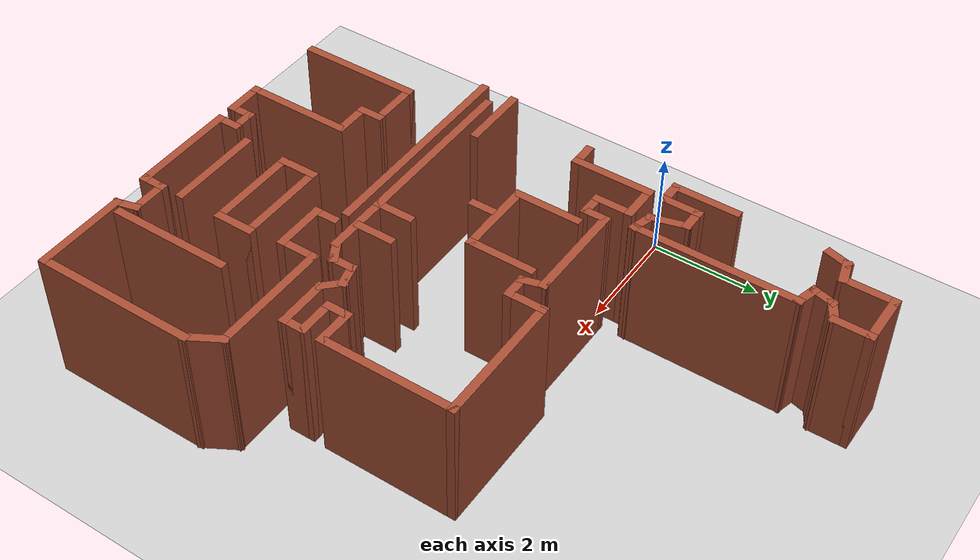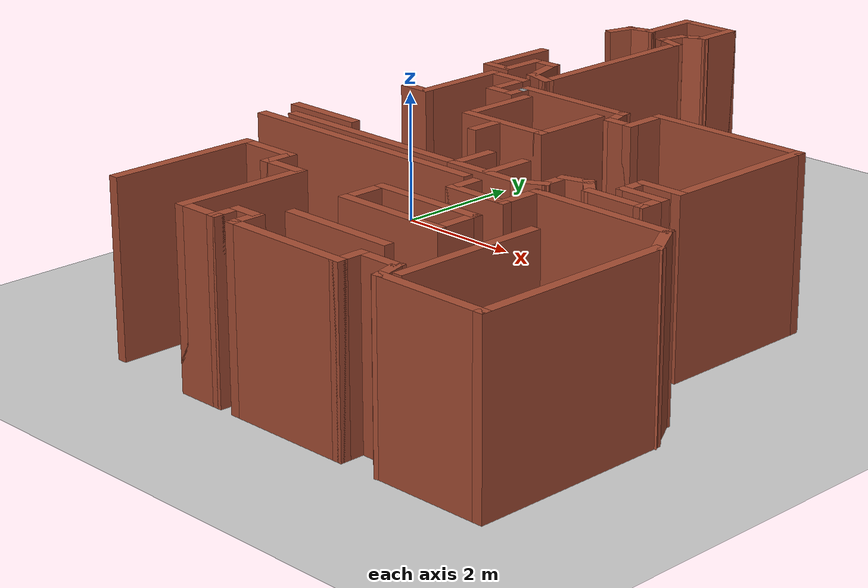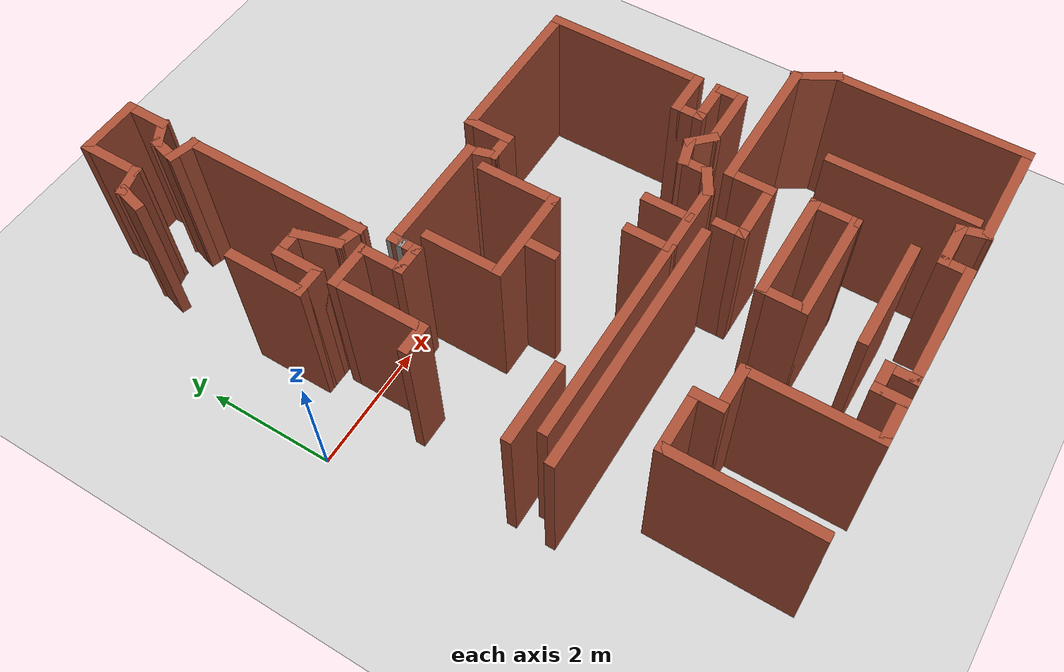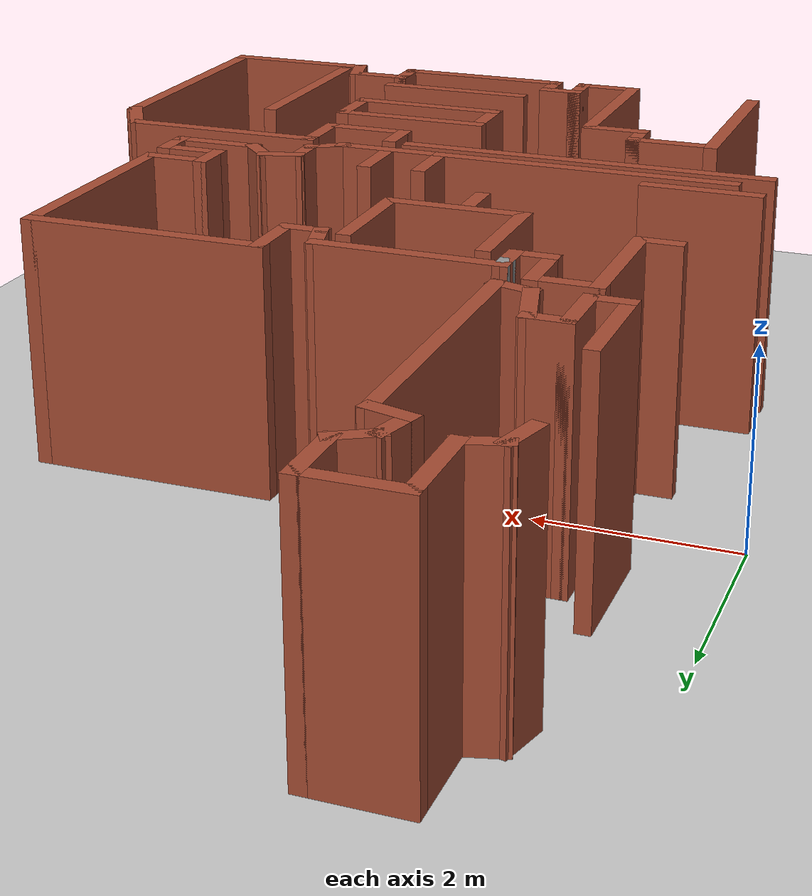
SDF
<sdf version="1.6">
 <world name="default">
  <model name="ground_plane">
   <static>1</static>
   <link name="link">
    <collision name="collision">
     <geometry><plane><normal>0 0 1</normal><size>100 100</size></plane></geometry>
     <surface>
      <contact><collide_bitmask>65535</collide_bitmask></contact>
      <friction><ode><mu>100</mu><mu2>50</mu2></ode></friction>
     </surface>
    </collision>
    <visual name="visual">
     <cast_shadows>0</cast_shadows>
     <geometry><plane><normal>0 0 1</normal><size>100 100</size></plane></geometry>
     <material>
      <script><uri>file://media/materials/scripts/gazebo.material</uri><name>Gazebo/Grey</name></script>
     </material>
    </visual>
   </link>
  </model>
  <model name="map_29">
   <pose>1.33629 -0.887991 0 0 -0 0</pose>
   <link name="Wall_100">
    <collision name="Wall_100_Collision">
     <geometry><box><size>0.75 0.15 2.5</size></box></geometry>
     <pose>0 0 1.25 0 -0 0</pose>
    </collision>
    <visual name="Wall_100_Visual">
     <pose>0 0 1.25 0 -0 0</pose>
     <geometry><box><size>0.75 0.15 2.5</size></box></geometry>
     <material>
      <script><uri>file://media/materials/scripts/gazebo.material</uri><name>Gazebo/Bricks</name></script>
      <ambient>1 1 1 1</ambient>
     </material>
     <meta><layer>0</layer></meta>
    </visual>
    <pose>6.46557 -2.50228 0 0 -0 2.0944</pose>
   </link>
   <link name="Wall_101">
    <collision name="Wall_101_Collision">
     <geometry><box><size>2.25 0.15 2.5</size></box></geometry>
     <pose>0 0 1.25 0 -0 0</pose>
    </collision>
    <visual name="Wall_101_Visual">
     <pose>0 0 1.25 0 -0 0</pose>
     <geometry><box><size>2.25 0.15 2.5</size></box></geometry>
     <material>
      <script><uri>file://media/materials/scripts/gazebo.material</uri><name>Gazebo/Bricks</name></script>
      <ambient>1 1 1 1</ambient>
     </material>
     <meta><layer>0</layer></meta>
    </visual>
    <pose>5.26557 -2.24247 0 0 -0 3.14159</pose>
   </link>
   <link name="Wall_102">
    <collision name="Wall_102_Collision">
     <geometry><box><size>0.75 0.15 2.5</size></box></geometry>
     <pose>0 0 1.25 0 -0 0</pose>
    </collision>
    <visual name="Wall_102_Visual">
     <pose>0 0 1.25 0 -0 0</pose>
     <geometry><box><size>0.75 0.15 2.5</size></box></geometry>
     <material>
      <script><uri>file://media/materials/scripts/gazebo.material</uri><name>Gazebo/Bricks</name></script>
      <ambient>1 1 1 1</ambient>
     </material>
     <meta><layer>0</layer></meta>
    </visual>
    <pose>4.21557 -2.54247 0 0 -0 -1.5708</pose>
   </link>
   <link name="Wall_103">
    <collision name="Wall_103_Collision">
     <geometry><box><size>1 0.15 2.5</size></box></geometry>
     <pose>0 0 1.25 0 -0 0</pose>
    </collision>
    <visual name="Wall_103_Visual">
     <pose>0 0 1.25 0 -0 0</pose>
     <geometry><box><size>1 0.15 2.5</size></box></geometry>
     <material>
      <script><uri>file://media/materials/scripts/gazebo.material</uri><name>Gazebo/Bricks</name></script>
      <ambient>1 1 1 1</ambient>
     </material>
     <meta><layer>0</layer></meta>
    </visual>
    <pose>3.79057 -2.84247 0 0 -0 3.14159</pose>
   </link>
   <link name="Wall_104">
    <collision name="Wall_104_Collision">
     <geometry><box><size>0.5 0.15 2.5</size></box></geometry>
     <pose>0 0 1.25 0 -0 0</pose>
    </collision>
    <visual name="Wall_104_Visual">
     <pose>0 0 1.25 0 -0 0</pose>
     <geometry><box><size>0.5 0.15 2.5</size></box></geometry>
     <material>
      <script><uri>file://media/materials/scripts/gazebo.material</uri><name>Gazebo/Bricks</name></script>
      <ambient>1 1 1 1</ambient>
     </material>
     <meta><layer>0</layer></meta>
    </visual>
    <pose>3.36557 -2.66747 0 0 -0 1.5708</pose>
   </link>
   <link name="Wall_107">
    <collision name="Wall_107_Collision">
     <geometry><box><size>4 0.15 2.5</size></box></geometry>
     <pose>0 0 1.25 0 -0 0</pose>
    </collision>
    <visual name="Wall_107_Visual">
     <pose>0 0 1.25 0 -0 0</pose>
     <geometry><box><size>4 0.15 2.5</size></box></geometry>
     <material>
      <script><uri>file://media/materials/scripts/gazebo.material</uri><name>Gazebo/Bricks</name></script>
      <ambient>1 1 1 1</ambient>
     </material>
     <meta><layer>0</layer></meta>
    </visual>
    <pose>1.18819 -2.4126 0 0 -0 3.14159</pose>
   </link>
   <link name="Wall_109">
    <collision name="Wall_109_Collision">
     <geometry><box><size>1.25 0.15 2.5</size></box></geometry>
     <pose>0 0 1.25 0 -0 0</pose>
    </collision>
    <visual name="Wall_109_Visual">
     <pose>0 0 1.25 0 -0 0</pose>
     <geometry><box><size>1.25 0.15 2.5</size></box></geometry>
     <material>
      <script><uri>file://media/materials/scripts/gazebo.material</uri><name>Gazebo/Bricks</name></script>
      <ambient>1 1 1 1</ambient>
     </material>
     <meta><layer>0</layer></meta>
    </visual>
    <pose>-0.186808 -1.8126 0 0 -0 0</pose>
   </link>
   <link name="Wall_112">
    <collision name="Wall_112_Collision">
     <geometry><box><size>3.25 0.15 2.5</size></box></geometry>
     <pose>0 0 1.25 0 -0 0</pose>
    </collision>
    <visual name="Wall_112_Visual">
     <pose>0 0 1.25 0 -0 0</pose>
     <geometry><box><size>3.25 0.15 2.5</size></box></geometry>
     <material>
      <script><uri>file://media/materials/scripts/gazebo.material</uri><name>Gazebo/Bricks</name></script>
      <ambient>1 1 1 1</ambient>
     </material>
     <meta><layer>0</layer></meta>
    </visual>
    <pose>1.11889 -2.1278 0 0 -0 0</pose>
   </link>
   <link name="Wall_113">
    <collision name="Wall_113_Collision">
     <geometry><box><size>0.75 0.15 2.5</size></box></geometry>
     <pose>0 0 1.25 0 -0 0</pose>
    </collision>
    <visual name="Wall_113_Visual">
     <pose>0 0 1.25 0 -0 0</pose>
     <geometry><box><size>0.75 0.15 2.5</size></box></geometry>
     <material>
      <script><uri>file://media/materials/scripts/gazebo.material</uri><name>Gazebo/Bricks</name></script>
      <ambient>1 1 1 1</ambient>
     </material>
     <meta><layer>0</layer></meta>
    </visual>
    <pose>2.66889 -1.8278 0 0 -0 1.5708</pose>
   </link>
   <link name="Wall_115">
    <collision name="Wall_115_Collision">
     <geometry><box><size>1.25 0.15 2.5</size></box></geometry>
     <pose>0 0 1.25 0 -0 0</pose>
    </collision>
    <visual name="Wall_115_Visual">
     <pose>0 0 1.25 0 -0 0</pose>
     <geometry><box><size>1.25 0.15 2.5</size></box></geometry>
     <material>
      <script><uri>file://media/materials/scripts/gazebo.material</uri><name>Gazebo/Bricks</name></script>
      <ambient>1 1 1 1</ambient>
     </material>
     <meta><layer>0</layer></meta>
    </visual>
    <pose>3.21889 -2.1278 0 0 -0 0</pose>
   </link>
   <link name="Wall_116">
    <collision name="Wall_116_Collision">
     <geometry><box><size>0.5 0.15 2.5</size></box></geometry>
     <pose>0 0 1.25 0 -0 0</pose>
    </collision>
    <visual name="Wall_116_Visual">
     <pose>0 0 1.25 0 -0 0</pose>
     <geometry><box><size>0.5 0.15 2.5</size></box></geometry>
     <material>
      <script><uri>file://media/materials/scripts/gazebo.material</uri><name>Gazebo/Bricks</name></script>
      <ambient>1 1 1 1</ambient>
     </material>
     <meta><layer>0</layer></meta>
    </visual>
    <pose>3.92045 -2.0403 0 0 -0 0.523599</pose>
   </link>
   <link name="Wall_117">
    <collision name="Wall_117_Collision">
     <geometry><box><size>0.5 0.15 2.5</size></box></geometry>
     <pose>0 0 1.25 0 -0 0</pose>
    </collision>
    <visual name="Wall_117_Visual">
     <pose>0 0 1.25 0 -0 0</pose>
     <geometry><box><size>0.5 0.15 2.5</size></box></geometry>
     <material>
      <script><uri>file://media/materials/scripts/gazebo.material</uri><name>Gazebo/Bricks</name></script>
      <ambient>1 1 1 1</ambient>
     </material>
     <meta><layer>0</layer></meta>
    </visual>
    <pose>4.072 -1.7778 0 0 -0 1.5708</pose>
   </link>
   <link name="Wall_118">
    <collision name="Wall_118_Collision">
     <geometry><box><size>0.5 0.15 2.5</size></box></geometry>
     <pose>0 0 1.25 0 -0 0</pose>
    </collision>
    <visual name="Wall_118_Visual">
     <pose>0 0 1.25 0 -0 0</pose>
     <geometry><box><size>0.5 0.15 2.5</size></box></geometry>
     <material>
      <script><uri>file://media/materials/scripts/gazebo.material</uri><name>Gazebo/Bricks</name></script>
      <ambient>1 1 1 1</ambient>
     </material>
     <meta><layer>0</layer></meta>
    </visual>
    <pose>4.24104 -1.55751 0 0 -0 0.261799</pose>
   </link>
   <link name="Wall_119">
    <collision name="Wall_119_Collision">
     <geometry><box><size>0.5 0.15 2.5</size></box></geometry>
     <pose>0 0 1.25 0 -0 0</pose>
    </collision>
    <visual name="Wall_119_Visual">
     <pose>0 0 1.25 0 -0 0</pose>
     <geometry><box><size>0.5 0.15 2.5</size></box></geometry>
     <material>
      <script><uri>file://media/materials/scripts/gazebo.material</uri><name>Gazebo/Bricks</name></script>
      <ambient>1 1 1 1</ambient>
     </material>
     <meta><layer>0</layer></meta>
    </visual>
    <pose>4.53382 -1.63596 0 0 -0 -0.785398</pose>
   </link>
   <link name="Wall_120">
    <collision name="Wall_120_Collision">
     <geometry><box><size>1 0.15 2.5</size></box></geometry>
     <pose>0 0 1.25 0 -0 0</pose>
    </collision>
    <visual name="Wall_120_Visual">
     <pose>0 0 1.25 0 -0 0</pose>
     <geometry><box><size>1 0.15 2.5</size></box></geometry>
     <material>
      <script><uri>file://media/materials/scripts/gazebo.material</uri><name>Gazebo/Bricks</name></script>
      <ambient>1 1 1 1</ambient>
     </material>
     <meta><layer>0</layer></meta>
    </visual>
    <pose>5.08256 -1.7597 0 0 -0 0</pose>
   </link>
   <link name="Wall_125">
    <collision name="Wall_125_Collision">
     <geometry><box><size>0.5 0.15 2.5</size></box></geometry>
     <pose>0 0 1.25 0 -0 0</pose>
    </collision>
    <visual name="Wall_125_Visual">
     <pose>0 0 1.25 0 -0 0</pose>
     <geometry><box><size>0.5 0.15 2.5</size></box></geometry>
     <material>
      <script><uri>file://media/materials/scripts/gazebo.material</uri><name>Gazebo/Bricks</name></script>
      <ambient>1 1 1 1</ambient>
     </material>
     <meta><layer>0</layer></meta>
    </visual>
    <pose>5.50756 -1.5847 0 0 -0 1.5708</pose>
   </link>
   <link name="Wall_126">
    <collision name="Wall_126_Collision">
     <geometry><box><size>0.75 0.15 2.5</size></box></geometry>
     <pose>0 0 1.25 0 -0 0</pose>
    </collision>
    <visual name="Wall_126_Visual">
     <pose>0 0 1.25 0 -0 0</pose>
     <geometry><box><size>0.75 0.15 2.5</size></box></geometry>
     <material>
      <script><uri>file://media/materials/scripts/gazebo.material</uri><name>Gazebo/Bricks</name></script>
      <ambient>1 1 1 1</ambient>
     </material>
     <meta><layer>0</layer></meta>
    </visual>
    <pose>5.20756 -1.4097 0 0 -0 3.14159</pose>
   </link>
   <link name="Wall_127">
    <collision name="Wall_127_Collision">
     <geometry><box><size>0.5 0.15 2.5</size></box></geometry>
     <pose>0 0 1.25 0 -0 0</pose>
    </collision>
    <visual name="Wall_127_Visual">
     <pose>0 0 1.25 0 -0 0</pose>
     <geometry><box><size>0.5 0.15 2.5</size></box></geometry>
     <material>
      <script><uri>file://media/materials/scripts/gazebo.material</uri><name>Gazebo/Bricks</name></script>
      <ambient>1 1 1 1</ambient>
     </material>
     <meta><layer>0</layer></meta>
    </visual>
    <pose>4.90756 -1.2347 0 0 -0 1.5708</pose>
   </link>
   <link name="Wall_128">
    <collision name="Wall_128_Collision">
     <geometry><box><size>0.75 0.15 2.5</size></box></geometry>
     <pose>0 0 1.25 0 -0 0</pose>
    </collision>
    <visual name="Wall_128_Visual">
     <pose>0 0 1.25 0 -0 0</pose>
     <geometry><box><size>0.75 0.15 2.5</size></box></geometry>
     <material>
      <script><uri>file://media/materials/scripts/gazebo.material</uri><name>Gazebo/Bricks</name></script>
      <ambient>1 1 1 1</ambient>
     </material>
     <meta><layer>0</layer></meta>
    </visual>
    <pose>5.20756 -1.0597 0 0 -0 0</pose>
   </link>
   <link name="Wall_129">
    <collision name="Wall_129_Collision">
     <geometry><box><size>2.5 0.15 2.5</size></box></geometry>
     <pose>0 0 1.25 0 -0 0</pose>
    </collision>
    <visual name="Wall_129_Visual">
     <pose>0 0 1.25 0 -0 0</pose>
     <geometry><box><size>2.5 0.15 2.5</size></box></geometry>
     <material>
      <script><uri>file://media/materials/scripts/gazebo.material</uri><name>Gazebo/Bricks</name></script>
      <ambient>1 1 1 1</ambient>
     </material>
     <meta><layer>0</layer></meta>
    </visual>
    <pose>5.50756 0.115297 0 0 -0 1.5708</pose>
   </link>
   <link name="Wall_130">
    <collision name="Wall_130_Collision">
     <geometry><box><size>2.5 0.15 2.5</size></box></geometry>
     <pose>0 0 1.25 0 -0 0</pose>
    </collision>
    <visual name="Wall_130_Visual">
     <pose>0 0 1.25 0 -0 0</pose>
     <geometry><box><size>2.5 0.15 2.5</size></box></geometry>
     <material>
      <script><uri>file://media/materials/scripts/gazebo.material</uri><name>Gazebo/Bricks</name></script>
      <ambient>1 1 1 1</ambient>
     </material>
     <meta><layer>0</layer></meta>
    </visual>
    <pose>4.33256 1.2903 0 0 -0 3.14159</pose>
   </link>
   <link name="Wall_135">
    <collision name="Wall_135_Collision">
     <geometry><box><size>0.25 0.15 2.5</size></box></geometry>
     <pose>0 0 1.25 0 -0 0</pose>
    </collision>
    <visual name="Wall_135_Visual">
     <pose>0 0 1.25 0 -0 0</pose>
     <geometry><box><size>0.25 0.15 2.5</size></box></geometry>
     <material>
      <script><uri>file://media/materials/scripts/gazebo.material</uri><name>Gazebo/Grey</name></script>
      <ambient>1 1 1 1</ambient>
     </material>
     <meta><layer>0</layer></meta>
    </visual>
    <pose>0.931681 0.98689 0 0 -0 -1.5708</pose>
   </link>
   <link name="Wall_139">
    <collision name="Wall_139_Collision">
     <geometry><box><size>0.75 0.15 2.5</size></box></geometry>
     <pose>0 0 1.25 0 -0 0</pose>
    </collision>
    <visual name="Wall_139_Visual">
     <pose>0 0 1.25 0 -0 0</pose>
     <geometry><box><size>0.75 0.15 2.5</size></box></geometry>
     <material>
      <script><uri>file://media/materials/scripts/gazebo.material</uri><name>Gazebo/Bricks</name></script>
      <ambient>1 1 1 1</ambient>
     </material>
     <meta><layer>0</layer></meta>
    </visual>
    <pose>3.15756 0.990297 0 0 -0 -1.5708</pose>
   </link>
   <link name="Wall_140">
    <collision name="Wall_140_Collision">
     <geometry><box><size>0.5 0.15 2.5</size></box></geometry>
     <pose>0 0 1.25 0 -0 0</pose>
    </collision>
    <visual name="Wall_140_Visual">
     <pose>0 0 1.25 0 -0 0</pose>
     <geometry><box><size>0.5 0.15 2.5</size></box></geometry>
     <material>
      <script><uri>file://media/materials/scripts/gazebo.material</uri><name>Gazebo/Bricks</name></script>
      <ambient>1 1 1 1</ambient>
     </material>
     <meta><layer>0</layer></meta>
    </visual>
    <pose>2.98256 0.690297 0 0 -0 3.14159</pose>
   </link>
   <link name="Wall_141">
    <collision name="Wall_141_Collision">
     <geometry><box><size>0.5 0.15 2.5</size></box></geometry>
     <pose>0 0 1.25 0 -0 0</pose>
    </collision>
    <visual name="Wall_141_Visual">
     <pose>0 0 1.25 0 -0 0</pose>
     <geometry><box><size>0.5 0.15 2.5</size></box></geometry>
     <material>
      <script><uri>file://media/materials/scripts/gazebo.material</uri><name>Gazebo/Bricks</name></script>
      <ambient>1 1 1 1</ambient>
     </material>
     <meta><layer>0</layer></meta>
    </visual>
    <pose>2.76227 0.859334 0 0 -0 1.8326</pose>
   </link>
   <link name="Wall_142">
    <collision name="Wall_142_Collision">
     <geometry><box><size>1.93532 0.15 2.5</size></box></geometry>
     <pose>0 0 1.25 0 -0 0</pose>
    </collision>
    <visual name="Wall_142_Visual">
     <pose>0 0 1.25 0 -0 0</pose>
     <geometry><box><size>1.93532 0.15 2.5</size></box></geometry>
     <material>
      <script><uri>file://media/materials/scripts/gazebo.material</uri><name>Gazebo/Bricks</name></script>
      <ambient>1 1 1 1</ambient>
     </material>
     <meta><layer>0</layer></meta>
    </visual>
    <pose>1.82433 1.03263 0 0 -0 3.13682</pose>
   </link>
   <link name="Wall_145">
    <collision name="Wall_145_Collision">
     <geometry><box><size>0.5 0.15 2.5</size></box></geometry>
     <pose>0 0 1.25 0 -0 0</pose>
    </collision>
    <visual name="Wall_145_Visual">
     <pose>0 0 1.25 0 -0 0</pose>
     <geometry><box><size>0.5 0.15 2.5</size></box></geometry>
     <material>
      <script><uri>file://media/materials/scripts/gazebo.material</uri><name>Gazebo/Bricks</name></script>
      <ambient>1 1 1 1</ambient>
     </material>
     <meta><layer>0</layer></meta>
    </visual>
    <pose>0.931681 0.86189 0 0 -0 -1.5708</pose>
   </link>
   <link name="Wall_146">
    <collision name="Wall_146_Collision">
     <geometry><box><size>0.5 0.15 2.5</size></box></geometry>
     <pose>0 0 1.25 0 -0 0</pose>
    </collision>
    <visual name="Wall_146_Visual">
     <pose>0 0 1.25 0 -0 0</pose>
     <geometry><box><size>0.5 0.15 2.5</size></box></geometry>
     <material>
      <script><uri>file://media/materials/scripts/gazebo.material</uri><name>Gazebo/Bricks</name></script>
      <ambient>1 1 1 1</ambient>
     </material>
     <meta><layer>0</layer></meta>
    </visual>
    <pose>0.756681 0.686889 0 0 -0 3.14159</pose>
   </link>
   <link name="Wall_149">
    <collision name="Wall_149_Collision">
     <geometry><box><size>0.75 0.15 2.5</size></box></geometry>
     <pose>0 0 1.25 0 -0 0</pose>
    </collision>
    <visual name="Wall_149_Visual">
     <pose>0 0 1.25 0 -0 0</pose>
     <geometry><box><size>0.75 0.15 2.5</size></box></geometry>
     <material>
      <script><uri>file://media/materials/scripts/gazebo.material</uri><name>Gazebo/Bricks</name></script>
      <ambient>1 1 1 1</ambient>
     </material>
     <meta><layer>0</layer></meta>
    </visual>
    <pose>0.581681 0.98689 0 0 -0 1.5708</pose>
   </link>
   <link name="Wall_150">
    <collision name="Wall_150_Collision">
     <geometry><box><size>0.75 0.15 2.5</size></box></geometry>
     <pose>0 0 1.25 0 -0 0</pose>
    </collision>
    <visual name="Wall_150_Visual">
     <pose>0 0 1.25 0 -0 0</pose>
     <geometry><box><size>0.75 0.15 2.5</size></box></geometry>
     <material>
      <script><uri>file://media/materials/scripts/gazebo.material</uri><name>Gazebo/Bricks</name></script>
      <ambient>1 1 1 1</ambient>
     </material>
     <meta><layer>0</layer></meta>
    </visual>
    <pose>0.281681 1.28689 0 0 -0 3.14159</pose>
   </link>
   <link name="Wall_151">
    <collision name="Wall_151_Collision">
     <geometry><box><size>1.5 0.15 2.5</size></box></geometry>
     <pose>0 0 1.25 0 -0 0</pose>
    </collision>
    <visual name="Wall_151_Visual">
     <pose>0 0 1.25 0 -0 0</pose>
     <geometry><box><size>1.5 0.15 2.5</size></box></geometry>
     <material>
      <script><uri>file://media/materials/scripts/gazebo.material</uri><name>Gazebo/Bricks</name></script>
      <ambient>1 1 1 1</ambient>
     </material>
     <meta><layer>0</layer></meta>
    </visual>
    <pose>-0.018319 0.61189 0 0 -0 -1.5708</pose>
   </link>
   <link name="Wall_152">
    <collision name="Wall_152_Collision">
     <geometry><box><size>0.5 0.15 2.5</size></box></geometry>
     <pose>0 0 1.25 0 -0 0</pose>
    </collision>
    <visual name="Wall_152_Visual">
     <pose>0 0 1.25 0 -0 0</pose>
     <geometry><box><size>0.5 0.15 2.5</size></box></geometry>
     <material>
      <script><uri>file://media/materials/scripts/gazebo.material</uri><name>Gazebo/Bricks</name></script>
      <ambient>1 1 1 1</ambient>
     </material>
     <meta><layer>0</layer></meta>
    </visual>
    <pose>-0.193319 -0.06311 0 0 -0 3.14159</pose>
   </link>
   <link name="Wall_157">
    <collision name="Wall_157_Collision">
     <geometry><box><size>1.25 0.15 2.5</size></box></geometry>
     <pose>0 0 1.25 0 -0 0</pose>
    </collision>
    <visual name="Wall_157_Visual">
     <pose>0 0 1.25 0 -0 0</pose>
     <geometry><box><size>1.25 0.15 2.5</size></box></geometry>
     <material>
      <script><uri>file://media/materials/scripts/gazebo.material</uri><name>Gazebo/Bricks</name></script>
      <ambient>1 1 1 1</ambient>
     </material>
     <meta><layer>0</layer></meta>
    </visual>
    <pose>-0.368319 2.13689 0 0 -0 -1.5708</pose>
   </link>
   <link name="Wall_158">
    <collision name="Wall_158_Collision">
     <geometry><box><size>0.5 0.15 2.5</size></box></geometry>
     <pose>0 0 1.25 0 -0 0</pose>
    </collision>
    <visual name="Wall_158_Visual">
     <pose>0 0 1.25 0 -0 0</pose>
     <geometry><box><size>0.5 0.15 2.5</size></box></geometry>
     <material>
      <script><uri>file://media/materials/scripts/gazebo.material</uri><name>Gazebo/Bricks</name></script>
      <ambient>1 1 1 1</ambient>
     </material>
     <meta><layer>0</layer></meta>
    </visual>
    <pose>-0.193319 1.58689 0 0 -0 0</pose>
   </link>
   <link name="Wall_159">
    <collision name="Wall_159_Collision">
     <geometry><box><size>0.75 0.15 2.5</size></box></geometry>
     <pose>0 0 1.25 0 -0 0</pose>
    </collision>
    <visual name="Wall_159_Visual">
     <pose>0 0 1.25 0 -0 0</pose>
     <geometry><box><size>0.75 0.15 2.5</size></box></geometry>
     <material>
      <script><uri>file://media/materials/scripts/gazebo.material</uri><name>Gazebo/Bricks</name></script>
      <ambient>1 1 1 1</ambient>
     </material>
     <meta><layer>0</layer></meta>
    </visual>
    <pose>-0.018319 1.88689 0 0 -0 1.5708</pose>
   </link>
   <link name="Wall_160">
    <collision name="Wall_160_Collision">
     <geometry><box><size>0.5 0.15 2.5</size></box></geometry>
     <pose>0 0 1.25 0 -0 0</pose>
    </collision>
    <visual name="Wall_160_Visual">
     <pose>0 0 1.25 0 -0 0</pose>
     <geometry><box><size>0.5 0.15 2.5</size></box></geometry>
     <material>
      <script><uri>file://media/materials/scripts/gazebo.material</uri><name>Gazebo/Bricks</name></script>
      <ambient>1 1 1 1</ambient>
     </material>
     <meta><layer>0</layer></meta>
    </visual>
    <pose>0.156681 2.18689 0 0 -0 0</pose>
   </link>
   <link name="Wall_161">
    <collision name="Wall_161_Collision">
     <geometry><box><size>0.75 0.15 2.5</size></box></geometry>
     <pose>0 0 1.25 0 -0 0</pose>
    </collision>
    <visual name="Wall_161_Visual">
     <pose>0 0 1.25 0 -0 0</pose>
     <geometry><box><size>0.75 0.15 2.5</size></box></geometry>
     <material>
      <script><uri>file://media/materials/scripts/gazebo.material</uri><name>Gazebo/Bricks</name></script>
      <ambient>1 1 1 1</ambient>
     </material>
     <meta><layer>0</layer></meta>
    </visual>
    <pose>0.409326 1.89711 0 0 -0 -1.309</pose>
   </link>
   <link name="Wall_162">
    <collision name="Wall_162_Collision">
     <geometry><box><size>0.5 0.15 2.5</size></box></geometry>
     <pose>0 0 1.25 0 -0 0</pose>
    </collision>
    <visual name="Wall_162_Visual">
     <pose>0 0 1.25 0 -0 0</pose>
     <geometry><box><size>0.5 0.15 2.5</size></box></geometry>
     <material>
      <script><uri>file://media/materials/scripts/gazebo.material</uri><name>Gazebo/Bricks</name></script>
      <ambient>1 1 1 1</ambient>
     </material>
     <meta><layer>0</layer></meta>
    </visual>
    <pose>0.656009 1.56204 0 0 -0 -0.261799</pose>
   </link>
   <link name="Wall_165">
    <collision name="Wall_165_Collision">
     <geometry><box><size>3 0.15 2.5</size></box></geometry>
     <pose>0 0 1.25 0 -0 0</pose>
    </collision>
    <visual name="Wall_165_Visual">
     <pose>0 0 1.25 0 -0 0</pose>
     <geometry><box><size>3 0.15 2.5</size></box></geometry>
     <material>
      <script><uri>file://media/materials/scripts/gazebo.material</uri><name>Gazebo/Bricks</name></script>
      <ambient>1 1 1 1</ambient>
     </material>
     <meta><layer>0</layer></meta>
    </visual>
    <pose>0.825046 2.94175 0 0 -0 1.5708</pose>
   </link>
   <link name="Wall_166">
    <collision name="Wall_166_Collision">
     <geometry><box><size>0.5 0.15 2.5</size></box></geometry>
     <pose>0 0 1.25 0 -0 0</pose>
    </collision>
    <visual name="Wall_166_Visual">
     <pose>0 0 1.25 0 -0 0</pose>
     <geometry><box><size>0.5 0.15 2.5</size></box></geometry>
     <material>
      <script><uri>file://media/materials/scripts/gazebo.material</uri><name>Gazebo/Bricks</name></script>
      <ambient>1 1 1 1</ambient>
     </material>
     <meta><layer>0</layer></meta>
    </visual>
    <pose>0.656009 4.41204 0 0 -0 2.87979</pose>
   </link>
   <link name="Wall_167">
    <collision name="Wall_167_Collision">
     <geometry><box><size>0.5 0.15 2.5</size></box></geometry>
     <pose>0 0 1.25 0 -0 0</pose>
    </collision>
    <visual name="Wall_167_Visual">
     <pose>0 0 1.25 0 -0 0</pose>
     <geometry><box><size>0.5 0.15 2.5</size></box></geometry>
     <material>
      <script><uri>file://media/materials/scripts/gazebo.material</uri><name>Gazebo/Bricks</name></script>
      <ambient>1 1 1 1</ambient>
     </material>
     <meta><layer>0</layer></meta>
    </visual>
    <pose>0.532265 4.62637 0 0 -0 1.309</pose>
   </link>
   <link name="Wall_168">
    <collision name="Wall_168_Collision">
     <geometry><box><size>0.5 0.15 2.5</size></box></geometry>
     <pose>0 0 1.25 0 -0 0</pose>
    </collision>
    <visual name="Wall_168_Visual">
     <pose>0 0 1.25 0 -0 0</pose>
     <geometry><box><size>0.5 0.15 2.5</size></box></geometry>
     <material>
      <script><uri>file://media/materials/scripts/gazebo.material</uri><name>Gazebo/Bricks</name></script>
      <ambient>1 1 1 1</ambient>
     </material>
     <meta><layer>0</layer></meta>
    </visual>
    <pose>0.729113 4.88291 0 0 -0 0.523599</pose>
   </link>
   <link name="Wall_169">
    <collision name="Wall_169_Collision">
     <geometry><box><size>0.75 0.15 2.5</size></box></geometry>
     <pose>0 0 1.25 0 -0 0</pose>
    </collision>
    <visual name="Wall_169_Visual">
     <pose>0 0 1.25 0 -0 0</pose>
     <geometry><box><size>0.75 0.15 2.5</size></box></geometry>
     <material>
      <script><uri>file://media/materials/scripts/gazebo.material</uri><name>Gazebo/Bricks</name></script>
      <ambient>1 1 1 1</ambient>
     </material>
     <meta><layer>0</layer></meta>
    </visual>
    <pose>0.880668 5.27041 0 0 -0 1.5708</pose>
   </link>
   <link name="Wall_170">
    <collision name="Wall_170_Collision">
     <geometry><box><size>1 0.15 2.5</size></box></geometry>
     <pose>0 0 1.25 0 -0 0</pose>
    </collision>
    <visual name="Wall_170_Visual">
     <pose>0 0 1.25 0 -0 0</pose>
     <geometry><box><size>1 0.15 2.5</size></box></geometry>
     <material>
      <script><uri>file://media/materials/scripts/gazebo.material</uri><name>Gazebo/Bricks</name></script>
      <ambient>1 1 1 1</ambient>
     </material>
     <meta><layer>0</layer></meta>
    </visual>
    <pose>0.455668 5.57041 0 0 -0 3.14159</pose>
   </link>
   <link name="Wall_171">
    <collision name="Wall_171_Collision">
     <geometry><box><size>1 0.15 2.5</size></box></geometry>
     <pose>0 0 1.25 0 -0 0</pose>
    </collision>
    <visual name="Wall_171_Visual">
     <pose>0 0 1.25 0 -0 0</pose>
     <geometry><box><size>1 0.15 2.5</size></box></geometry>
     <material>
      <script><uri>file://media/materials/scripts/gazebo.material</uri><name>Gazebo/Bricks</name></script>
      <ambient>1 1 1 1</ambient>
     </material>
     <meta><layer>0</layer></meta>
    </visual>
    <pose>0.030668 5.14541 0 0 -0 -1.5708</pose>
   </link>
   <link name="Wall_173">
    <collision name="Wall_173_Collision">
     <geometry><box><size>0.5 0.15 2.5</size></box></geometry>
     <pose>0 0 1.25 0 -0 0</pose>
    </collision>
    <visual name="Wall_173_Visual">
     <pose>0 0 1.25 0 -0 0</pose>
     <geometry><box><size>0.5 0.15 2.5</size></box></geometry>
     <material>
      <script><uri>file://media/materials/scripts/gazebo.material</uri><name>Gazebo/Bricks</name></script>
      <ambient>1 1 1 1</ambient>
     </material>
     <meta><layer>0</layer></meta>
    </visual>
    <pose>-0.138369 4.67511 0 0 -0 -2.87979</pose>
   </link>
   <link name="Wall_174">
    <collision name="Wall_174_Collision">
     <geometry><box><size>0.5 0.15 2.5</size></box></geometry>
     <pose>0 0 1.25 0 -0 0</pose>
    </collision>
    <visual name="Wall_174_Visual">
     <pose>0 0 1.25 0 -0 0</pose>
     <geometry><box><size>0.5 0.15 2.5</size></box></geometry>
     <material>
      <script><uri>file://media/materials/scripts/gazebo.material</uri><name>Gazebo/Bricks</name></script>
      <ambient>1 1 1 1</ambient>
     </material>
     <meta><layer>0</layer></meta>
    </visual>
    <pose>-0.3527 4.46078 0 0 -0 -1.8326</pose>
   </link>
   <link name="Wall_198">
    <collision name="Wall_198_Collision">
     <geometry><box><size>1.25 0.15 2.5</size></box></geometry>
     <pose>0 0 1.25 0 -0 0</pose>
    </collision>
    <visual name="Wall_198_Visual">
     <pose>0 0 1.25 0 -0 0</pose>
     <geometry><box><size>1.25 0.15 2.5</size></box></geometry>
     <material>
      <script><uri>file://media/materials/scripts/gazebo.material</uri><name>Gazebo/Bricks</name></script>
      <ambient>1 1 1 1</ambient>
     </material>
     <meta><layer>0</layer></meta>
    </visual>
    <pose>1.20879 0.132048 0 0 -0 -1.5708</pose>
   </link>
   <link name="Wall_199">
    <collision name="Wall_199_Collision">
     <geometry><box><size>1.5 0.15 2.5</size></box></geometry>
     <pose>0 0 1.25 0 -0 0</pose>
    </collision>
    <visual name="Wall_199_Visual">
     <pose>0 0 1.25 0 -0 0</pose>
     <geometry><box><size>1.5 0.15 2.5</size></box></geometry>
     <material>
      <script><uri>file://media/materials/scripts/gazebo.material</uri><name>Gazebo/Bricks</name></script>
      <ambient>1 1 1 1</ambient>
     </material>
     <meta><layer>0</layer></meta>
    </visual>
    <pose>1.88379 -0.417953 0 0 -0 0</pose>
   </link>
   <link name="Wall_200">
    <collision name="Wall_200_Collision">
     <geometry><box><size>1.25 0.15 2.5</size></box></geometry>
     <pose>0 0 1.25 0 -0 0</pose>
    </collision>
    <visual name="Wall_200_Visual">
     <pose>0 0 1.25 0 -0 0</pose>
     <geometry><box><size>1.25 0.15 2.5</size></box></geometry>
     <material>
      <script><uri>file://media/materials/scripts/gazebo.material</uri><name>Gazebo/Bricks</name></script>
      <ambient>1 1 1 1</ambient>
     </material>
     <meta><layer>0</layer></meta>
    </visual>
    <pose>2.55879 0.132048 0 0 -0 1.5708</pose>
   </link>
   <link name="Wall_202">
    <collision name="Wall_202_Collision">
     <geometry><box><size>0.5 0.15 2.5</size></box></geometry>
     <pose>0 0 1.25 0 -0 0</pose>
    </collision>
    <visual name="Wall_202_Visual">
     <pose>0 0 1.25 0 -0 0</pose>
     <geometry><box><size>0.5 0.15 2.5</size></box></geometry>
     <material>
      <script><uri>file://media/materials/scripts/gazebo.material</uri><name>Gazebo/Bricks</name></script>
      <ambient>1 1 1 1</ambient>
     </material>
     <meta><layer>0</layer></meta>
    </visual>
    <pose>1.79069 -0.709652 0 0 -0 -1.5708</pose>
   </link>
   <link name="Wall_204">
    <collision name="Wall_204_Collision">
     <geometry><box><size>2.25 0.15 2.5</size></box></geometry>
     <pose>0 0 1.25 0 -0 0</pose>
    </collision>
    <visual name="Wall_204_Visual">
     <pose>0 0 1.25 0 -0 0</pose>
     <geometry><box><size>2.25 0.15 2.5</size></box></geometry>
     <material>
      <script><uri>file://media/materials/scripts/gazebo.material</uri><name>Gazebo/Bricks</name></script>
      <ambient>1 1 1 1</ambient>
     </material>
     <meta><layer>0</layer></meta>
    </visual>
    <pose>5.14984 -4.3619 0 0 -0 -1.5708</pose>
   </link>
   <link name="Wall_208">
    <collision name="Wall_208_Collision">
     <geometry><box><size>1.75 0.15 2.5</size></box></geometry>
     <pose>0 0 1.25 0 -0 0</pose>
    </collision>
    <visual name="Wall_208_Visual">
     <pose>0 0 1.25 0 -0 0</pose>
     <geometry><box><size>1.75 0.15 2.5</size></box></geometry>
     <material>
      <script><uri>file://media/materials/scripts/gazebo.material</uri><name>Gazebo/Bricks</name></script>
      <ambient>1 1 1 1</ambient>
     </material>
     <meta><layer>0</layer></meta>
    </visual>
    <pose>3.48999 -4.87245 0 0 -0 0</pose>
   </link>
   <link name="Wall_214">
    <collision name="Wall_214_Collision">
     <geometry><box><size>0.75 0.15 2.5</size></box></geometry>
     <pose>0 0 1.25 0 -0 0</pose>
    </collision>
    <visual name="Wall_214_Visual">
     <pose>0 0 1.25 0 -0 0</pose>
     <geometry><box><size>0.75 0.15 2.5</size></box></geometry>
     <material>
      <script><uri>file://media/materials/scripts/gazebo.material</uri><name>Gazebo/Bricks</name></script>
      <ambient>1 1 1 1</ambient>
     </material>
     <meta><layer>0</layer></meta>
    </visual>
    <pose>2.71644 -3.74415 0 0 -0 -1.5708</pose>
   </link>
   <link name="Wall_215">
    <collision name="Wall_215_Collision">
     <geometry><box><size>1.75 0.15 2.5</size></box></geometry>
     <pose>0 0 1.25 0 -0 0</pose>
    </collision>
    <visual name="Wall_215_Visual">
     <pose>0 0 1.25 0 -0 0</pose>
     <geometry><box><size>1.75 0.15 2.5</size></box></geometry>
     <material>
      <script><uri>file://media/materials/scripts/gazebo.material</uri><name>Gazebo/Bricks</name></script>
      <ambient>1 1 1 1</ambient>
     </material>
     <meta><layer>0</layer></meta>
    </visual>
    <pose>3.51644 -4.04415 0 0 -0 0</pose>
   </link>
   <link name="Wall_216">
    <collision name="Wall_216_Collision">
     <geometry><box><size>0.75 0.15 2.5</size></box></geometry>
     <pose>0 0 1.25 0 -0 0</pose>
    </collision>
    <visual name="Wall_216_Visual">
     <pose>0 0 1.25 0 -0 0</pose>
     <geometry><box><size>0.75 0.15 2.5</size></box></geometry>
     <material>
      <script><uri>file://media/materials/scripts/gazebo.material</uri><name>Gazebo/Bricks</name></script>
      <ambient>1 1 1 1</ambient>
     </material>
     <meta><layer>0</layer></meta>
    </visual>
    <pose>4.31644 -3.74415 0 0 -0 1.5708</pose>
   </link>
   <link name="Wall_217">
    <collision name="Wall_217_Collision">
     <geometry><box><size>1.75 0.15 2.5</size></box></geometry>
     <pose>0 0 1.25 0 -0 0</pose>
    </collision>
    <visual name="Wall_217_Visual">
     <pose>0 0 1.25 0 -0 0</pose>
     <geometry><box><size>1.75 0.15 2.5</size></box></geometry>
     <material>
      <script><uri>file://media/materials/scripts/gazebo.material</uri><name>Gazebo/Bricks</name></script>
      <ambient>1 1 1 1</ambient>
     </material>
     <meta><layer>0</layer></meta>
    </visual>
    <pose>3.51644 -3.44415 0 0 -0 3.14159</pose>
   </link>
   <link name="Wall_219">
    <collision name="Wall_219_Collision">
     <geometry><box><size>0.75 0.15 2.5</size></box></geometry>
     <pose>0 0 1.25 0 -0 0</pose>
    </collision>
    <visual name="Wall_219_Visual">
     <pose>0 0 1.25 0 -0 0</pose>
     <geometry><box><size>0.75 0.15 2.5</size></box></geometry>
     <material>
      <script><uri>file://media/materials/scripts/gazebo.material</uri><name>Gazebo/Bricks</name></script>
      <ambient>1 1 1 1</ambient>
     </material>
     <meta><layer>0</layer></meta>
    </visual>
    <pose>3.24544 -1.78685 0 0 -0 -1.5708</pose>
   </link>
   <link name="Wall_59">
    <collision name="Wall_59_Collision">
     <geometry><box><size>2.25 0.15 2.5</size></box></geometry>
     <pose>0 0 1.25 0 -0 0</pose>
    </collision>
    <visual name="Wall_59_Visual">
     <pose>0 0 1.25 0 -0 0</pose>
     <geometry><box><size>2.25 0.15 2.5</size></box></geometry>
     <material>
      <script><uri>file://media/materials/scripts/gazebo.material</uri><name>Gazebo/Bricks</name></script>
      <ambient>1 1 1 1</ambient>
     </material>
     <meta><layer>0</layer></meta>
    </visual>
    <pose>0.074986 -4.47401 0 0 -0 1.5708</pose>
   </link>
   <link name="Wall_83">
    <collision name="Wall_83_Collision">
     <geometry><box><size>1 0.15 2.5</size></box></geometry>
     <pose>0 0 1.25 0 -0 0</pose>
    </collision>
    <visual name="Wall_83_Visual">
     <pose>0 0 1.25 0 -0 0</pose>
     <geometry><box><size>1 0.15 2.5</size></box></geometry>
     <material>
      <script><uri>file://media/materials/scripts/gazebo.material</uri><name>Gazebo/Bricks</name></script>
      <ambient>1 1 1 1</ambient>
     </material>
     <meta><layer>0</layer></meta>
    </visual>
    <pose>0.499986 -3.42401 0 0 -0 0</pose>
   </link>
   <link name="Wall_84">
    <collision name="Wall_84_Collision">
     <geometry><box><size>0.5 0.15 2.5</size></box></geometry>
     <pose>0 0 1.25 0 -0 0</pose>
    </collision>
    <visual name="Wall_84_Visual">
     <pose>0 0 1.25 0 -0 0</pose>
     <geometry><box><size>0.5 0.15 2.5</size></box></geometry>
     <material>
      <script><uri>file://media/materials/scripts/gazebo.material</uri><name>Gazebo/Bricks</name></script>
      <ambient>1 1 1 1</ambient>
     </material>
     <meta><layer>0</layer></meta>
    </visual>
    <pose>0.924986 -3.59901 0 0 -0 -1.5708</pose>
   </link>
   <link name="Wall_85">
    <collision name="Wall_85_Collision">
     <geometry><box><size>0.75 0.15 2.5</size></box></geometry>
     <pose>0 0 1.25 0 -0 0</pose>
    </collision>
    <visual name="Wall_85_Visual">
     <pose>0 0 1.25 0 -0 0</pose>
     <geometry><box><size>0.75 0.15 2.5</size></box></geometry>
     <material>
      <script><uri>file://media/materials/scripts/gazebo.material</uri><name>Gazebo/Bricks</name></script>
      <ambient>1 1 1 1</ambient>
     </material>
     <meta><layer>0</layer></meta>
    </visual>
    <pose>1.22499 -3.77401 0 0 -0 0</pose>
   </link>
   <link name="Wall_86">
    <collision name="Wall_86_Collision">
     <geometry><box><size>2 0.15 2.5</size></box></geometry>
     <pose>0 0 1.25 0 -0 0</pose>
    </collision>
    <visual name="Wall_86_Visual">
     <pose>0 0 1.25 0 -0 0</pose>
     <geometry><box><size>2 0.15 2.5</size></box></geometry>
     <material>
      <script><uri>file://media/materials/scripts/gazebo.material</uri><name>Gazebo/Bricks</name></script>
      <ambient>1 1 1 1</ambient>
     </material>
     <meta><layer>0</layer></meta>
    </visual>
    <pose>1.52499 -4.69901 0 0 -0 -1.5708</pose>
   </link>
   <link name="Wall_87">
    <collision name="Wall_87_Collision">
     <geometry><box><size>0.75 0.15 2.5</size></box></geometry>
     <pose>0 0 1.25 0 -0 0</pose>
    </collision>
    <visual name="Wall_87_Visual">
     <pose>0 0 1.25 0 -0 0</pose>
     <geometry><box><size>0.75 0.15 2.5</size></box></geometry>
     <material>
      <script><uri>file://media/materials/scripts/gazebo.material</uri><name>Gazebo/Bricks</name></script>
      <ambient>1 1 1 1</ambient>
     </material>
     <meta><layer>0</layer></meta>
    </visual>
    <pose>1.82499 -5.62401 0 0 -0 0</pose>
   </link>
   <link name="Wall_88">
    <collision name="Wall_88_Collision">
     <geometry><box><size>0.5 0.15 2.5</size></box></geometry>
     <pose>0 0 1.25 0 -0 0</pose>
    </collision>
    <visual name="Wall_88_Visual">
     <pose>0 0 1.25 0 -0 0</pose>
     <geometry><box><size>0.5 0.15 2.5</size></box></geometry>
     <material>
      <script><uri>file://media/materials/scripts/gazebo.material</uri><name>Gazebo/Bricks</name></script>
      <ambient>1 1 1 1</ambient>
     </material>
     <meta><layer>0</layer></meta>
    </visual>
    <pose>2.12499 -5.44901 0 0 -0 1.5708</pose>
   </link>
   <link name="Wall_89">
    <collision name="Wall_89_Collision">
     <geometry><box><size>0.5 0.15 2.5</size></box></geometry>
     <pose>0 0 1.25 0 -0 0</pose>
    </collision>
    <visual name="Wall_89_Visual">
     <pose>0 0 1.25 0 -0 0</pose>
     <geometry><box><size>0.5 0.15 2.5</size></box></geometry>
     <material>
      <script><uri>file://media/materials/scripts/gazebo.material</uri><name>Gazebo/Bricks</name></script>
      <ambient>1 1 1 1</ambient>
     </material>
     <meta><layer>0</layer></meta>
    </visual>
    <pose>2.29999 -5.27401 0 0 -0 0</pose>
   </link>
   <link name="Wall_90">
    <collision name="Wall_90_Collision">
     <geometry><box><size>0.5 0.15 2.5</size></box></geometry>
     <pose>0 0 1.25 0 -0 0</pose>
    </collision>
    <visual name="Wall_90_Visual">
     <pose>0 0 1.25 0 -0 0</pose>
     <geometry><box><size>0.5 0.15 2.5</size></box></geometry>
     <material>
      <script><uri>file://media/materials/scripts/gazebo.material</uri><name>Gazebo/Bricks</name></script>
      <ambient>1 1 1 1</ambient>
     </material>
     <meta><layer>0</layer></meta>
    </visual>
    <pose>2.47499 -5.44901 0 0 -0 -1.5708</pose>
   </link>
   <link name="Wall_91">
    <collision name="Wall_91_Collision">
     <geometry><box><size>2 0.15 2.5</size></box></geometry>
     <pose>0 0 1.25 0 -0 0</pose>
    </collision>
    <visual name="Wall_91_Visual">
     <pose>0 0 1.25 0 -0 0</pose>
     <geometry><box><size>2 0.15 2.5</size></box></geometry>
     <material>
      <script><uri>file://media/materials/scripts/gazebo.material</uri><name>Gazebo/Bricks</name></script>
      <ambient>1 1 1 1</ambient>
     </material>
     <meta><layer>0</layer></meta>
    </visual>
    <pose>3.39999 -5.62401 0 0 -0 0</pose>
   </link>
   <link name="Wall_92">
    <collision name="Wall_92_Collision">
     <geometry><box><size>0.5 0.15 2.5</size></box></geometry>
     <pose>0 0 1.25 0 -0 0</pose>
    </collision>
    <visual name="Wall_92_Visual">
     <pose>0 0 1.25 0 -0 0</pose>
     <geometry><box><size>0.5 0.15 2.5</size></box></geometry>
     <material>
      <script><uri>file://media/materials/scripts/gazebo.material</uri><name>Gazebo/Bricks</name></script>
      <ambient>1 1 1 1</ambient>
     </material>
     <meta><layer>0</layer></meta>
    </visual>
    <pose>4.32499 -5.44901 0 0 -0 1.5708</pose>
   </link>
   <link name="Wall_93">
    <collision name="Wall_93_Collision">
     <geometry><box><size>0.75 0.15 2.5</size></box></geometry>
     <pose>0 0 1.25 0 -0 0</pose>
    </collision>
    <visual name="Wall_93_Visual">
     <pose>0 0 1.25 0 -0 0</pose>
     <geometry><box><size>0.75 0.15 2.5</size></box></geometry>
     <material>
      <script><uri>file://media/materials/scripts/gazebo.material</uri><name>Gazebo/Bricks</name></script>
      <ambient>1 1 1 1</ambient>
     </material>
     <meta><layer>0</layer></meta>
    </visual>
    <pose>4.62499 -5.27401 0 0 -0 0</pose>
   </link>
   <link name="Wall_94">
    <collision name="Wall_94_Collision">
     <geometry><box><size>0.5 0.15 2.5</size></box></geometry>
     <pose>0 0 1.25 0 -0 0</pose>
    </collision>
    <visual name="Wall_94_Visual">
     <pose>0 0 1.25 0 -0 0</pose>
     <geometry><box><size>0.5 0.15 2.5</size></box></geometry>
     <material>
      <script><uri>file://media/materials/scripts/gazebo.material</uri><name>Gazebo/Bricks</name></script>
      <ambient>1 1 1 1</ambient>
     </material>
     <meta><layer>0</layer></meta>
    </visual>
    <pose>4.97028 -5.44305 0 0 -0 -1.309</pose>
   </link>
   <link name="Wall_95">
    <collision name="Wall_95_Collision">
     <geometry><box><size>1.75 0.15 2.5</size></box></geometry>
     <pose>0 0 1.25 0 -0 0</pose>
    </collision>
    <visual name="Wall_95_Visual">
     <pose>0 0 1.25 0 -0 0</pose>
     <geometry><box><size>1.75 0.15 2.5</size></box></geometry>
     <material>
      <script><uri>file://media/materials/scripts/gazebo.material</uri><name>Gazebo/Bricks</name></script>
      <ambient>1 1 1 1</ambient>
     </material>
     <meta><layer>0</layer></meta>
    </visual>
    <pose>5.81557 -5.61209 0 0 -0 0</pose>
   </link>
   <link name="Wall_99">
    <collision name="Wall_99_Collision">
     <geometry><box><size>3 0.15 2.5</size></box></geometry>
     <pose>0 0 1.25 0 -0 0</pose>
    </collision>
    <visual name="Wall_99_Visual">
     <pose>0 0 1.25 0 -0 0</pose>
     <geometry><box><size>3 0.15 2.5</size></box></geometry>
     <material>
      <script><uri>file://media/materials/scripts/gazebo.material</uri><name>Gazebo/Bricks</name></script>
      <ambient>1 1 1 1</ambient>
     </material>
     <meta><layer>0</layer></meta>
    </visual>
    <pose>6.61557 -4.18709 0 0 -0 1.5708</pose>
   </link>
   <static>1</static>
  </model>
 </world>
</sdf>
